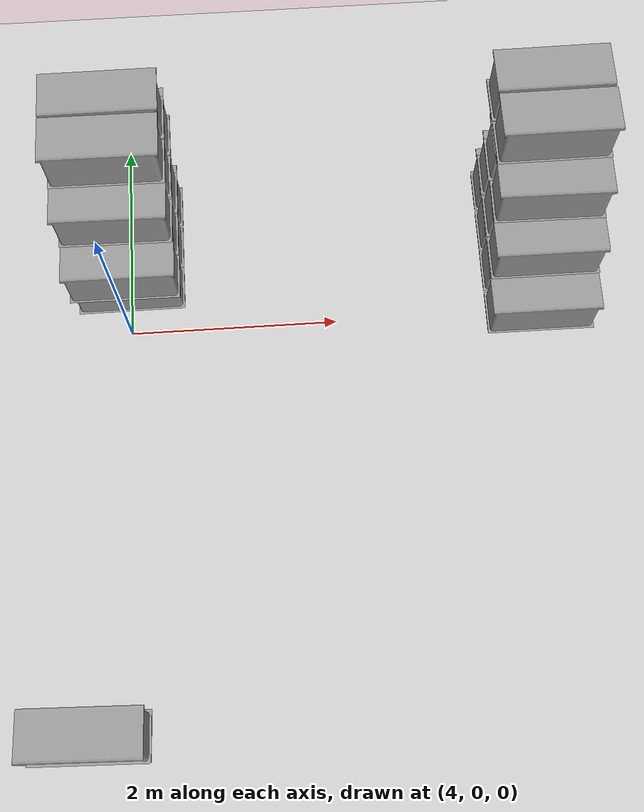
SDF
<sdf version="1.7">
 <world name="default">
  <model name="ground_plane">
   <static>1</static>
   <link name="link">
    <collision name="collision">
     <geometry><plane><normal>0 0 1</normal><size>100 100</size></plane></geometry>
     <surface><friction><ode><mu>100</mu><mu2>50</mu2></ode></friction></surface>
    </collision>
    <visual name="visual">
     <cast_shadows>0</cast_shadows>
     <geometry><plane><normal>0 0 1</normal><size>100 100</size></plane></geometry>
     <material>
      <script><uri>file://media/materials/scripts/gazebo.material</uri><name>Gazebo/Grey</name></script>
     </material>
    </visual>
   </link>
  </model>
  <model name="my_robot36">
   <link name="link_0">
    <inertial>
     <mass>1</mass>
     <inertia>
      <ixx>0.166667</ixx>
      <ixy>0</ixy>
      <ixz>0</ixz>
      <iyy>0.166667</iyy>
      <iyz>0</iyz>
      <izz>0.166667</izz>
     </inertia>
    </inertial>
    <visual name="visual">
     <geometry><mesh><uri>/home/cyun/cotton_box.stl</uri><scale>1 1 1</scale></mesh></geometry>
     <material>
      <lighting>1</lighting>
      <script><uri>file://media/materials/scripts/gazebo.material</uri><name>Gazebo/Grey</name></script>
      <shader type="pixel"><normal_map>__default__</normal_map></shader>
      <ambient>0.3 0.3 0.3 1</ambient>
      <diffuse>0.7 0.7 0.7 1</diffuse>
      <specular>0.01 0.01 0.01 1</specular>
      <emissive>0 0 0 1</emissive>
     </material>
    </visual>
    <collision name="collision">
     <geometry><mesh><uri>/home/cyun/cotton_box.stl</uri><scale>1 1 1</scale></mesh></geometry>
     <surface>
      <friction>
       <ode><mu>1</mu><mu2>1</mu2><fdir1>0 0 0</fdir1><slip1>0</slip1><slip2>0</slip2></ode>
       <torsional>
        <coefficient>1</coefficient>
        <patch_radius>0</patch_radius>
        <surface_radius>0</surface_radius>
        <use_patch_radius>1</use_patch_radius>
        <ode><slip>0</slip></ode>
       </torsional>
      </friction>
      <bounce><restitution_coefficient>0</restitution_coefficient><threshold>1e+06</threshold></bounce>
      <contact>
       <collide_without_contact>0</collide_without_contact>
       <collide_without_contact_bitmask>1</collide_without_contact_bitmask>
       <collide_bitmask>1</collide_bitmask>
       <ode>
        <soft_cfm>0</soft_cfm>
        <soft_erp>0.2</soft_erp>
        <kp>1e+13</kp>
        <kd>1</kd>
        <max_vel>0.01</max_vel>
        <min_depth>0</min_depth>
       </ode>
       <bullet>
        <split_impulse>1</split_impulse>
        <split_impulse_penetration_threshold>-0.01</split_impulse_penetration_threshold>
        <soft_cfm>0</soft_cfm>
        <soft_erp>0.2</soft_erp>
        <kp>1e+13</kp>
        <kd>1</kd>
       </bullet>
      </contact>
     </surface>
    </collision>
   </link>
   <static>0</static>
   <pose>3.99993 0.453425 0.019808 8e-06 2.7e-05 1.57569</pose>
  </model>
  <model name="my_robot37">
   <link name="link_0">
    <inertial>
     <mass>1</mass>
     <inertia>
      <ixx>0.166667</ixx>
      <ixy>0</ixy>
      <ixz>0</ixz>
      <iyy>0.166667</iyy>
      <iyz>0</iyz>
      <izz>0.166667</izz>
     </inertia>
    </inertial>
    <visual name="visual">
     <geometry><mesh><uri>/home/cyun/cotton_box.stl</uri><scale>1 1 1</scale></mesh></geometry>
     <material>
      <lighting>1</lighting>
      <script><uri>file://media/materials/scripts/gazebo.material</uri><name>Gazebo/Grey</name></script>
      <shader type="pixel"><normal_map>__default__</normal_map></shader>
      <ambient>0.3 0.3 0.3 1</ambient>
      <diffuse>0.7 0.7 0.7 1</diffuse>
      <specular>0.01 0.01 0.01 1</specular>
      <emissive>0 0 0 1</emissive>
     </material>
    </visual>
    <collision name="collision">
     <geometry><mesh><uri>/home/cyun/cotton_box.stl</uri><scale>1 1 1</scale></mesh></geometry>
     <surface>
      <friction>
       <ode><mu>1</mu><mu2>1</mu2><fdir1>0 0 0</fdir1><slip1>0</slip1><slip2>0</slip2></ode>
       <torsional>
        <coefficient>1</coefficient>
        <patch_radius>0</patch_radius>
        <surface_radius>0</surface_radius>
        <use_patch_radius>1</use_patch_radius>
        <ode><slip>0</slip></ode>
       </torsional>
      </friction>
      <bounce><restitution_coefficient>0</restitution_coefficient><threshold>1e+06</threshold></bounce>
      <contact>
       <collide_without_contact>0</collide_without_contact>
       <collide_without_contact_bitmask>1</collide_without_contact_bitmask>
       <collide_bitmask>1</collide_bitmask>
       <ode>
        <soft_cfm>0</soft_cfm>
        <soft_erp>0.2</soft_erp>
        <kp>1e+13</kp>
        <kd>1</kd>
        <max_vel>0.01</max_vel>
        <min_depth>0</min_depth>
       </ode>
       <bullet>
        <split_impulse>1</split_impulse>
        <split_impulse_penetration_threshold>-0.01</split_impulse_penetration_threshold>
        <soft_cfm>0</soft_cfm>
        <soft_erp>0.2</soft_erp>
        <kp>1e+13</kp>
        <kd>1</kd>
       </bullet>
      </contact>
     </surface>
    </collision>
   </link>
   <static>0</static>
   <pose>3.99965 0.901108 0.019917 -1.8e-05 -7e-06 1.56951</pose>
  </model>
  <model name="my_robot38">
   <link name="link_0">
    <inertial>
     <mass>1</mass>
     <inertia>
      <ixx>0.166667</ixx>
      <ixy>0</ixy>
      <ixz>0</ixz>
      <iyy>0.166667</iyy>
      <iyz>0</iyz>
      <izz>0.166667</izz>
     </inertia>
    </inertial>
    <visual name="visual">
     <geometry><mesh><uri>/home/cyun/cotton_box.stl</uri><scale>1 1 1</scale></mesh></geometry>
     <material>
      <lighting>1</lighting>
      <script><uri>file://media/materials/scripts/gazebo.material</uri><name>Gazebo/Grey</name></script>
      <shader type="pixel"><normal_map>__default__</normal_map></shader>
      <ambient>0.3 0.3 0.3 1</ambient>
      <diffuse>0.7 0.7 0.7 1</diffuse>
      <specular>0.01 0.01 0.01 1</specular>
      <emissive>0 0 0 1</emissive>
     </material>
    </visual>
    <collision name="collision">
     <geometry><mesh><uri>/home/cyun/cotton_box.stl</uri><scale>1 1 1</scale></mesh></geometry>
     <surface>
      <friction>
       <ode><mu>1</mu><mu2>1</mu2><fdir1>0 0 0</fdir1><slip1>0</slip1><slip2>0</slip2></ode>
       <torsional>
        <coefficient>1</coefficient>
        <patch_radius>0</patch_radius>
        <surface_radius>0</surface_radius>
        <use_patch_radius>1</use_patch_radius>
        <ode><slip>0</slip></ode>
       </torsional>
      </friction>
      <bounce><restitution_coefficient>0</restitution_coefficient><threshold>1e+06</threshold></bounce>
      <contact>
       <collide_without_contact>0</collide_without_contact>
       <collide_without_contact_bitmask>1</collide_without_contact_bitmask>
       <collide_bitmask>1</collide_bitmask>
       <ode>
        <soft_cfm>0</soft_cfm>
        <soft_erp>0.2</soft_erp>
        <kp>1e+13</kp>
        <kd>1</kd>
        <max_vel>0.01</max_vel>
        <min_depth>0</min_depth>
       </ode>
       <bullet>
        <split_impulse>1</split_impulse>
        <split_impulse_penetration_threshold>-0.01</split_impulse_penetration_threshold>
        <soft_cfm>0</soft_cfm>
        <soft_erp>0.2</soft_erp>
        <kp>1e+13</kp>
        <kd>1</kd>
       </bullet>
      </contact>
     </surface>
    </collision>
   </link>
   <static>0</static>
   <pose>4.00003 1.35052 0.019995 -1.3e-05 1.1e-05 1.57578</pose>
  </model>
  <model name="my_robot45">
   <link name="link_0">
    <inertial>
     <mass>1</mass>
     <inertia>
      <ixx>0.166667</ixx>
      <ixy>0</ixy>
      <ixz>0</ixz>
      <iyy>0.166667</iyy>
      <iyz>0</iyz>
      <izz>0.166667</izz>
     </inertia>
    </inertial>
    <visual name="visual">
     <geometry><mesh><uri>/home/cyun/cotton_box.stl</uri><scale>1 1 1</scale></mesh></geometry>
     <material>
      <lighting>1</lighting>
      <script><uri>file://media/materials/scripts/gazebo.material</uri><name>Gazebo/Grey</name></script>
      <shader type="pixel"><normal_map>__default__</normal_map></shader>
      <ambient>0.3 0.3 0.3 1</ambient>
      <diffuse>0.7 0.7 0.7 1</diffuse>
      <specular>0.01 0.01 0.01 1</specular>
      <emissive>0 0 0 1</emissive>
     </material>
    </visual>
    <collision name="collision">
     <geometry><mesh><uri>/home/cyun/cotton_box.stl</uri><scale>1 1 1</scale></mesh></geometry>
     <surface>
      <friction>
       <ode><mu>1</mu><mu2>1</mu2><fdir1>0 0 0</fdir1><slip1>0</slip1><slip2>0</slip2></ode>
       <torsional>
        <coefficient>1</coefficient>
        <patch_radius>0</patch_radius>
        <surface_radius>0</surface_radius>
        <use_patch_radius>1</use_patch_radius>
        <ode><slip>0</slip></ode>
       </torsional>
      </friction>
      <bounce><restitution_coefficient>0</restitution_coefficient><threshold>1e+06</threshold></bounce>
      <contact>
       <collide_without_contact>0</collide_without_contact>
       <collide_without_contact_bitmask>1</collide_without_contact_bitmask>
       <collide_bitmask>1</collide_bitmask>
       <ode>
        <soft_cfm>0</soft_cfm>
        <soft_erp>0.2</soft_erp>
        <kp>1e+13</kp>
        <kd>1</kd>
        <max_vel>0.01</max_vel>
        <min_depth>0</min_depth>
       </ode>
       <bullet>
        <split_impulse>1</split_impulse>
        <split_impulse_penetration_threshold>-0.01</split_impulse_penetration_threshold>
        <soft_cfm>0</soft_cfm>
        <soft_erp>0.2</soft_erp>
        <kp>1e+13</kp>
        <kd>1</kd>
       </bullet>
      </contact>
     </surface>
    </collision>
   </link>
   <static>0</static>
   <pose>4.00757 0.356114 0.509817 -1e-05 6e-06 1.56913</pose>
  </model>
  <model name="my_robot46">
   <link name="link_0">
    <inertial>
     <mass>1</mass>
     <inertia>
      <ixx>0.166667</ixx>
      <ixy>0</ixy>
      <ixz>0</ixz>
      <iyy>0.166667</iyy>
      <iyz>0</iyz>
      <izz>0.166667</izz>
     </inertia>
    </inertial>
    <visual name="visual">
     <geometry><mesh><uri>/home/cyun/cotton_box.stl</uri><scale>1 1 1</scale></mesh></geometry>
     <material>
      <lighting>1</lighting>
      <script><uri>file://media/materials/scripts/gazebo.material</uri><name>Gazebo/Grey</name></script>
      <shader type="pixel"><normal_map>__default__</normal_map></shader>
      <ambient>0.3 0.3 0.3 1</ambient>
      <diffuse>0.7 0.7 0.7 1</diffuse>
      <specular>0.01 0.01 0.01 1</specular>
      <emissive>0 0 0 1</emissive>
     </material>
    </visual>
    <collision name="collision">
     <geometry><mesh><uri>/home/cyun/cotton_box.stl</uri><scale>1 1 1</scale></mesh></geometry>
     <surface>
      <friction>
       <ode><mu>1</mu><mu2>1</mu2><fdir1>0 0 0</fdir1><slip1>0</slip1><slip2>0</slip2></ode>
       <torsional>
        <coefficient>1</coefficient>
        <patch_radius>0</patch_radius>
        <surface_radius>0</surface_radius>
        <use_patch_radius>1</use_patch_radius>
        <ode><slip>0</slip></ode>
       </torsional>
      </friction>
      <bounce><restitution_coefficient>0</restitution_coefficient><threshold>1e+06</threshold></bounce>
      <contact>
       <collide_without_contact>0</collide_without_contact>
       <collide_without_contact_bitmask>1</collide_without_contact_bitmask>
       <collide_bitmask>1</collide_bitmask>
       <ode>
        <soft_cfm>0</soft_cfm>
        <soft_erp>0.2</soft_erp>
        <kp>1e+13</kp>
        <kd>1</kd>
        <max_vel>0.01</max_vel>
        <min_depth>0</min_depth>
       </ode>
       <bullet>
        <split_impulse>1</split_impulse>
        <split_impulse_penetration_threshold>-0.01</split_impulse_penetration_threshold>
        <soft_cfm>0</soft_cfm>
        <soft_erp>0.2</soft_erp>
        <kp>1e+13</kp>
        <kd>1</kd>
       </bullet>
      </contact>
     </surface>
    </collision>
   </link>
   <static>0</static>
   <pose>4.0017 0.803054 0.509915 -1.2e-05 -7e-06 1.56832</pose>
  </model>
  <model name="my_robot47">
   <link name="link_0">
    <inertial>
     <mass>1</mass>
     <inertia>
      <ixx>0.166667</ixx>
      <ixy>0</ixy>
      <ixz>0</ixz>
      <iyy>0.166667</iyy>
      <iyz>0</iyz>
      <izz>0.166667</izz>
     </inertia>
    </inertial>
    <visual name="visual">
     <geometry><mesh><uri>/home/cyun/cotton_box.stl</uri><scale>1 1 1</scale></mesh></geometry>
     <material>
      <lighting>1</lighting>
      <script><uri>file://media/materials/scripts/gazebo.material</uri><name>Gazebo/Grey</name></script>
      <shader type="pixel"><normal_map>__default__</normal_map></shader>
      <ambient>0.3 0.3 0.3 1</ambient>
      <diffuse>0.7 0.7 0.7 1</diffuse>
      <specular>0.01 0.01 0.01 1</specular>
      <emissive>0 0 0 1</emissive>
     </material>
    </visual>
    <collision name="collision">
     <geometry><mesh><uri>/home/cyun/cotton_box.stl</uri><scale>1 1 1</scale></mesh></geometry>
     <surface>
      <friction>
       <ode><mu>1</mu><mu2>1</mu2><fdir1>0 0 0</fdir1><slip1>0</slip1><slip2>0</slip2></ode>
       <torsional>
        <coefficient>1</coefficient>
        <patch_radius>0</patch_radius>
        <surface_radius>0</surface_radius>
        <use_patch_radius>1</use_patch_radius>
        <ode><slip>0</slip></ode>
       </torsional>
      </friction>
      <bounce><restitution_coefficient>0</restitution_coefficient><threshold>1e+06</threshold></bounce>
      <contact>
       <collide_without_contact>0</collide_without_contact>
       <collide_without_contact_bitmask>1</collide_without_contact_bitmask>
       <collide_bitmask>1</collide_bitmask>
       <ode>
        <soft_cfm>0</soft_cfm>
        <soft_erp>0.2</soft_erp>
        <kp>1e+13</kp>
        <kd>1</kd>
        <max_vel>0.01</max_vel>
        <min_depth>0</min_depth>
       </ode>
       <bullet>
        <split_impulse>1</split_impulse>
        <split_impulse_penetration_threshold>-0.01</split_impulse_penetration_threshold>
        <soft_cfm>0</soft_cfm>
        <soft_erp>0.2</soft_erp>
        <kp>1e+13</kp>
        <kd>1</kd>
       </bullet>
      </contact>
     </surface>
    </collision>
   </link>
   <static>0</static>
   <pose>4.00145 1.25405 0.509991 1.1e-05 7e-06 1.56604</pose>
  </model>
  <model name="my_robot54">
   <link name="link_0">
    <inertial>
     <mass>1</mass>
     <inertia>
      <ixx>0.166667</ixx>
      <ixy>0</ixy>
      <ixz>0</ixz>
      <iyy>0.166667</iyy>
      <iyz>0</iyz>
      <izz>0.166667</izz>
     </inertia>
    </inertial>
    <visual name="visual">
     <geometry><mesh><uri>/home/cyun/cotton_box.stl</uri><scale>1 1 1</scale></mesh></geometry>
     <material>
      <lighting>1</lighting>
      <script><uri>file://media/materials/scripts/gazebo.material</uri><name>Gazebo/Grey</name></script>
      <shader type="pixel"><normal_map>__default__</normal_map></shader>
      <ambient>0.3 0.3 0.3 1</ambient>
      <diffuse>0.7 0.7 0.7 1</diffuse>
      <specular>0.01 0.01 0.01 1</specular>
      <emissive>0 0 0 1</emissive>
     </material>
    </visual>
    <collision name="collision">
     <geometry><mesh><uri>/home/cyun/cotton_box.stl</uri><scale>1 1 1</scale></mesh></geometry>
     <surface>
      <friction>
       <ode><mu>1</mu><mu2>1</mu2><fdir1>0 0 0</fdir1><slip1>0</slip1><slip2>0</slip2></ode>
       <torsional>
        <coefficient>1</coefficient>
        <patch_radius>0</patch_radius>
        <surface_radius>0</surface_radius>
        <use_patch_radius>1</use_patch_radius>
        <ode><slip>0</slip></ode>
       </torsional>
      </friction>
      <bounce><restitution_coefficient>0</restitution_coefficient><threshold>1e+06</threshold></bounce>
      <contact>
       <collide_without_contact>0</collide_without_contact>
       <collide_without_contact_bitmask>1</collide_without_contact_bitmask>
       <collide_bitmask>1</collide_bitmask>
       <ode>
        <soft_cfm>0</soft_cfm>
        <soft_erp>0.2</soft_erp>
        <kp>1e+13</kp>
        <kd>1</kd>
        <max_vel>0.01</max_vel>
        <min_depth>0</min_depth>
       </ode>
       <bullet>
        <split_impulse>1</split_impulse>
        <split_impulse_penetration_threshold>-0.01</split_impulse_penetration_threshold>
        <soft_cfm>0</soft_cfm>
        <soft_erp>0.2</soft_erp>
        <kp>1e+13</kp>
        <kd>1</kd>
       </bullet>
      </contact>
     </surface>
    </collision>
   </link>
   <static>0</static>
   <pose>4.00218 0.694463 0.999918 -4e-06 -6e-06 1.56103</pose>
  </model>
  <model name="my_robot55">
   <link name="link_0">
    <inertial>
     <mass>1</mass>
     <inertia>
      <ixx>0.166667</ixx>
      <ixy>0</ixy>
      <ixz>0</ixz>
      <iyy>0.166667</iyy>
      <iyz>0</iyz>
      <izz>0.166667</izz>
     </inertia>
    </inertial>
    <visual name="visual">
     <geometry><mesh><uri>/home/cyun/cotton_box.stl</uri><scale>1 1 1</scale></mesh></geometry>
     <material>
      <lighting>1</lighting>
      <script><uri>file://media/materials/scripts/gazebo.material</uri><name>Gazebo/Grey</name></script>
      <shader type="pixel"><normal_map>__default__</normal_map></shader>
      <ambient>0.3 0.3 0.3 1</ambient>
      <diffuse>0.7 0.7 0.7 1</diffuse>
      <specular>0.01 0.01 0.01 1</specular>
      <emissive>0 0 0 1</emissive>
     </material>
    </visual>
    <collision name="collision">
     <geometry><mesh><uri>/home/cyun/cotton_box.stl</uri><scale>1 1 1</scale></mesh></geometry>
     <surface>
      <friction>
       <ode><mu>1</mu><mu2>1</mu2><fdir1>0 0 0</fdir1><slip1>0</slip1><slip2>0</slip2></ode>
       <torsional>
        <coefficient>1</coefficient>
        <patch_radius>0</patch_radius>
        <surface_radius>0</surface_radius>
        <use_patch_radius>1</use_patch_radius>
        <ode><slip>0</slip></ode>
       </torsional>
      </friction>
      <bounce><restitution_coefficient>0</restitution_coefficient><threshold>1e+06</threshold></bounce>
      <contact>
       <collide_without_contact>0</collide_without_contact>
       <collide_without_contact_bitmask>1</collide_without_contact_bitmask>
       <collide_bitmask>1</collide_bitmask>
       <ode>
        <soft_cfm>0</soft_cfm>
        <soft_erp>0.2</soft_erp>
        <kp>1e+13</kp>
        <kd>1</kd>
        <max_vel>0.01</max_vel>
        <min_depth>0</min_depth>
       </ode>
       <bullet>
        <split_impulse>1</split_impulse>
        <split_impulse_penetration_threshold>-0.01</split_impulse_penetration_threshold>
        <soft_cfm>0</soft_cfm>
        <soft_erp>0.2</soft_erp>
        <kp>1e+13</kp>
        <kd>1</kd>
       </bullet>
      </contact>
     </surface>
    </collision>
   </link>
   <static>0</static>
   <pose>3.99865 1.1473 0.999992 1.2e-05 -0 1.58116</pose>
  </model>
  <model name="my_robot56">
   <link name="link_0">
    <inertial>
     <mass>1</mass>
     <inertia>
      <ixx>0.166667</ixx>
      <ixy>0</ixy>
      <ixz>0</ixz>
      <iyy>0.166667</iyy>
      <iyz>0</iyz>
      <izz>0.166667</izz>
     </inertia>
    </inertial>
    <visual name="visual">
     <geometry><mesh><uri>/home/cyun/cotton_box.stl</uri><scale>1 1 1</scale></mesh></geometry>
     <material>
      <lighting>1</lighting>
      <script><uri>file://media/materials/scripts/gazebo.material</uri><name>Gazebo/Grey</name></script>
      <shader type="pixel"><normal_map>__default__</normal_map></shader>
      <ambient>0.3 0.3 0.3 1</ambient>
      <diffuse>0.7 0.7 0.7 1</diffuse>
      <specular>0.01 0.01 0.01 1</specular>
      <emissive>0 0 0 1</emissive>
     </material>
    </visual>
    <collision name="collision">
     <geometry><mesh><uri>/home/cyun/cotton_box.stl</uri><scale>1 1 1</scale></mesh></geometry>
     <surface>
      <friction>
       <ode><mu>1</mu><mu2>1</mu2><fdir1>0 0 0</fdir1><slip1>0</slip1><slip2>0</slip2></ode>
       <torsional>
        <coefficient>1</coefficient>
        <patch_radius>0</patch_radius>
        <surface_radius>0</surface_radius>
        <use_patch_radius>1</use_patch_radius>
        <ode><slip>0</slip></ode>
       </torsional>
      </friction>
      <bounce><restitution_coefficient>0</restitution_coefficient><threshold>1e+06</threshold></bounce>
      <contact>
       <collide_without_contact>0</collide_without_contact>
       <collide_without_contact_bitmask>1</collide_without_contact_bitmask>
       <collide_bitmask>1</collide_bitmask>
       <ode>
        <soft_cfm>0</soft_cfm>
        <soft_erp>0.2</soft_erp>
        <kp>1e+13</kp>
        <kd>1</kd>
        <max_vel>0.01</max_vel>
        <min_depth>0</min_depth>
       </ode>
       <bullet>
        <split_impulse>1</split_impulse>
        <split_impulse_penetration_threshold>-0.01</split_impulse_penetration_threshold>
        <soft_cfm>0</soft_cfm>
        <soft_erp>0.2</soft_erp>
        <kp>1e+13</kp>
        <kd>1</kd>
       </bullet>
      </contact>
     </surface>
    </collision>
   </link>
   <static>0</static>
   <pose>3.99887 1.59316 0.999972 8e-06 8e-06 1.57917</pose>
  </model>
  <model name="my_robot62">
   <link name="link_0">
    <inertial>
     <mass>1</mass>
     <inertia>
      <ixx>0.166667</ixx>
      <ixy>0</ixy>
      <ixz>0</ixz>
      <iyy>0.166667</iyy>
      <iyz>0</iyz>
      <izz>0.166667</izz>
     </inertia>
    </inertial>
    <visual name="visual">
     <geometry><mesh><uri>/home/cyun/cotton_box.stl</uri><scale>1 1 1</scale></mesh></geometry>
     <material>
      <lighting>1</lighting>
      <script><uri>file://media/materials/scripts/gazebo.material</uri><name>Gazebo/Grey</name></script>
      <shader type="pixel"><normal_map>__default__</normal_map></shader>
      <ambient>0.3 0.3 0.3 1</ambient>
      <diffuse>0.7 0.7 0.7 1</diffuse>
      <specular>0.01 0.01 0.01 1</specular>
      <emissive>0 0 0 1</emissive>
     </material>
    </visual>
    <collision name="collision">
     <geometry><mesh><uri>/home/cyun/cotton_box.stl</uri><scale>1 1 1</scale></mesh></geometry>
     <surface>
      <friction>
       <ode><mu>1</mu><mu2>1</mu2><fdir1>0 0 0</fdir1><slip1>0</slip1><slip2>0</slip2></ode>
       <torsional>
        <coefficient>1</coefficient>
        <patch_radius>0</patch_radius>
        <surface_radius>0</surface_radius>
        <use_patch_radius>1</use_patch_radius>
        <ode><slip>0</slip></ode>
       </torsional>
      </friction>
      <bounce><restitution_coefficient>0</restitution_coefficient><threshold>1e+06</threshold></bounce>
      <contact>
       <collide_without_contact>0</collide_without_contact>
       <collide_without_contact_bitmask>1</collide_without_contact_bitmask>
       <collide_bitmask>1</collide_bitmask>
       <ode>
        <soft_cfm>0</soft_cfm>
        <soft_erp>0.2</soft_erp>
        <kp>1e+13</kp>
        <kd>1</kd>
        <max_vel>0.01</max_vel>
        <min_depth>0</min_depth>
       </ode>
       <bullet>
        <split_impulse>1</split_impulse>
        <split_impulse_penetration_threshold>-0.01</split_impulse_penetration_threshold>
        <soft_cfm>0</soft_cfm>
        <soft_erp>0.2</soft_erp>
        <kp>1e+13</kp>
        <kd>1</kd>
       </bullet>
      </contact>
     </surface>
    </collision>
   </link>
   <static>0</static>
   <pose>4.00288 1.03318 1.48999 1.2e-05 -0 1.56649</pose>
  </model>
  <model name="my_robot63">
   <link name="link_0">
    <inertial>
     <mass>1</mass>
     <inertia>
      <ixx>0.166667</ixx>
      <ixy>0</ixy>
      <ixz>0</ixz>
      <iyy>0.166667</iyy>
      <iyz>0</iyz>
      <izz>0.166667</izz>
     </inertia>
    </inertial>
    <visual name="visual">
     <geometry><mesh><uri>/home/cyun/cotton_box.stl</uri><scale>1 1 1</scale></mesh></geometry>
     <material>
      <lighting>1</lighting>
      <script><uri>file://media/materials/scripts/gazebo.material</uri><name>Gazebo/Grey</name></script>
      <shader type="pixel"><normal_map>__default__</normal_map></shader>
      <ambient>0.3 0.3 0.3 1</ambient>
      <diffuse>0.7 0.7 0.7 1</diffuse>
      <specular>0.01 0.01 0.01 1</specular>
      <emissive>0 0 0 1</emissive>
     </material>
    </visual>
    <collision name="collision">
     <geometry><mesh><uri>/home/cyun/cotton_box.stl</uri><scale>1 1 1</scale></mesh></geometry>
     <surface>
      <friction>
       <ode><mu>1</mu><mu2>1</mu2><fdir1>0 0 0</fdir1><slip1>0</slip1><slip2>0</slip2></ode>
       <torsional>
        <coefficient>1</coefficient>
        <patch_radius>0</patch_radius>
        <surface_radius>0</surface_radius>
        <use_patch_radius>1</use_patch_radius>
        <ode><slip>0</slip></ode>
       </torsional>
      </friction>
      <bounce><restitution_coefficient>0</restitution_coefficient><threshold>1e+06</threshold></bounce>
      <contact>
       <collide_without_contact>0</collide_without_contact>
       <collide_without_contact_bitmask>1</collide_without_contact_bitmask>
       <collide_bitmask>1</collide_bitmask>
       <ode>
        <soft_cfm>0</soft_cfm>
        <soft_erp>0.2</soft_erp>
        <kp>1e+13</kp>
        <kd>1</kd>
        <max_vel>0.01</max_vel>
        <min_depth>0</min_depth>
       </ode>
       <bullet>
        <split_impulse>1</split_impulse>
        <split_impulse_penetration_threshold>-0.01</split_impulse_penetration_threshold>
        <soft_cfm>0</soft_cfm>
        <soft_erp>0.2</soft_erp>
        <kp>1e+13</kp>
        <kd>1</kd>
       </bullet>
      </contact>
     </surface>
    </collision>
   </link>
   <static>0</static>
   <pose>4.00166 1.47829 1.48999 -1.3e-05 5.4e-05 1.57534</pose>
  </model>
  <model name="my_robot69">
   <link name="link_0">
    <inertial>
     <mass>1</mass>
     <inertia>
      <ixx>0.166667</ixx>
      <ixy>0</ixy>
      <ixz>0</ixz>
      <iyy>0.166667</iyy>
      <iyz>0</iyz>
      <izz>0.166667</izz>
     </inertia>
    </inertial>
    <visual name="visual">
     <geometry><mesh><uri>/home/cyun/cotton_box.stl</uri><scale>1 1 1</scale></mesh></geometry>
     <material>
      <lighting>1</lighting>
      <script><uri>file://media/materials/scripts/gazebo.material</uri><name>Gazebo/Grey</name></script>
      <shader type="pixel"><normal_map>__default__</normal_map></shader>
      <ambient>0.3 0.3 0.3 1</ambient>
      <diffuse>0.7 0.7 0.7 1</diffuse>
      <specular>0.01 0.01 0.01 1</specular>
      <emissive>0 0 0 1</emissive>
     </material>
    </visual>
    <collision name="collision">
     <geometry><mesh><uri>/home/cyun/cotton_box.stl</uri><scale>1 1 1</scale></mesh></geometry>
     <surface>
      <friction>
       <ode><mu>1</mu><mu2>1</mu2><fdir1>0 0 0</fdir1><slip1>0</slip1><slip2>0</slip2></ode>
       <torsional>
        <coefficient>1</coefficient>
        <patch_radius>0</patch_radius>
        <surface_radius>0</surface_radius>
        <use_patch_radius>1</use_patch_radius>
        <ode><slip>0</slip></ode>
       </torsional>
      </friction>
      <bounce><restitution_coefficient>0</restitution_coefficient><threshold>1e+06</threshold></bounce>
      <contact>
       <collide_without_contact>0</collide_without_contact>
       <collide_without_contact_bitmask>1</collide_without_contact_bitmask>
       <collide_bitmask>1</collide_bitmask>
       <ode>
        <soft_cfm>0</soft_cfm>
        <soft_erp>0.2</soft_erp>
        <kp>1e+13</kp>
        <kd>1</kd>
        <max_vel>0.01</max_vel>
        <min_depth>0</min_depth>
       </ode>
       <bullet>
        <split_impulse>1</split_impulse>
        <split_impulse_penetration_threshold>-0.01</split_impulse_penetration_threshold>
        <soft_cfm>0</soft_cfm>
        <soft_erp>0.2</soft_erp>
        <kp>1e+13</kp>
        <kd>1</kd>
       </bullet>
      </contact>
     </surface>
    </collision>
   </link>
   <static>0</static>
   <pose>7.99905 -0.001619 0.02 1e-06 -7e-06 1.5687</pose>
  </model>
  <model name="my_robot70">
   <link name="link_0">
    <inertial>
     <mass>1</mass>
     <inertia>
      <ixx>0.166667</ixx>
      <ixy>0</ixy>
      <ixz>0</ixz>
      <iyy>0.166667</iyy>
      <iyz>0</iyz>
      <izz>0.166667</izz>
     </inertia>
    </inertial>
    <visual name="visual">
     <geometry><mesh><uri>/home/cyun/cotton_box.stl</uri><scale>1 1 1</scale></mesh></geometry>
     <material>
      <lighting>1</lighting>
      <script><uri>file://media/materials/scripts/gazebo.material</uri><name>Gazebo/Grey</name></script>
      <shader type="pixel"><normal_map>__default__</normal_map></shader>
      <ambient>0.3 0.3 0.3 1</ambient>
      <diffuse>0.7 0.7 0.7 1</diffuse>
      <specular>0.01 0.01 0.01 1</specular>
      <emissive>0 0 0 1</emissive>
     </material>
    </visual>
    <collision name="collision">
     <geometry><mesh><uri>/home/cyun/cotton_box.stl</uri><scale>1 1 1</scale></mesh></geometry>
     <surface>
      <friction>
       <ode><mu>1</mu><mu2>1</mu2><fdir1>0 0 0</fdir1><slip1>0</slip1><slip2>0</slip2></ode>
       <torsional>
        <coefficient>1</coefficient>
        <patch_radius>0</patch_radius>
        <surface_radius>0</surface_radius>
        <use_patch_radius>1</use_patch_radius>
        <ode><slip>0</slip></ode>
       </torsional>
      </friction>
      <bounce><restitution_coefficient>0</restitution_coefficient><threshold>1e+06</threshold></bounce>
      <contact>
       <collide_without_contact>0</collide_without_contact>
       <collide_without_contact_bitmask>1</collide_without_contact_bitmask>
       <collide_bitmask>1</collide_bitmask>
       <ode>
        <soft_cfm>0</soft_cfm>
        <soft_erp>0.2</soft_erp>
        <kp>1e+13</kp>
        <kd>1</kd>
        <max_vel>0.01</max_vel>
        <min_depth>0</min_depth>
       </ode>
       <bullet>
        <split_impulse>1</split_impulse>
        <split_impulse_penetration_threshold>-0.01</split_impulse_penetration_threshold>
        <soft_cfm>0</soft_cfm>
        <soft_erp>0.2</soft_erp>
        <kp>1e+13</kp>
        <kd>1</kd>
       </bullet>
      </contact>
     </surface>
    </collision>
   </link>
   <static>0</static>
   <pose>7.99884 0.449173 0.02 0 1e-05 1.56777</pose>
  </model>
  <model name="my_robot71">
   <link name="link_0">
    <inertial>
     <mass>1</mass>
     <inertia>
      <ixx>0.166667</ixx>
      <ixy>0</ixy>
      <ixz>0</ixz>
      <iyy>0.166667</iyy>
      <iyz>0</iyz>
      <izz>0.166667</izz>
     </inertia>
    </inertial>
    <visual name="visual">
     <geometry><mesh><uri>/home/cyun/cotton_box.stl</uri><scale>1 1 1</scale></mesh></geometry>
     <material>
      <lighting>1</lighting>
      <script><uri>file://media/materials/scripts/gazebo.material</uri><name>Gazebo/Grey</name></script>
      <shader type="pixel"><normal_map>__default__</normal_map></shader>
      <ambient>0.3 0.3 0.3 1</ambient>
      <diffuse>0.7 0.7 0.7 1</diffuse>
      <specular>0.01 0.01 0.01 1</specular>
      <emissive>0 0 0 1</emissive>
     </material>
    </visual>
    <collision name="collision">
     <geometry><mesh><uri>/home/cyun/cotton_box.stl</uri><scale>1 1 1</scale></mesh></geometry>
     <surface>
      <friction>
       <ode><mu>1</mu><mu2>1</mu2><fdir1>0 0 0</fdir1><slip1>0</slip1><slip2>0</slip2></ode>
       <torsional>
        <coefficient>1</coefficient>
        <patch_radius>0</patch_radius>
        <surface_radius>0</surface_radius>
        <use_patch_radius>1</use_patch_radius>
        <ode><slip>0</slip></ode>
       </torsional>
      </friction>
      <bounce><restitution_coefficient>0</restitution_coefficient><threshold>1e+06</threshold></bounce>
      <contact>
       <collide_without_contact>0</collide_without_contact>
       <collide_without_contact_bitmask>1</collide_without_contact_bitmask>
       <collide_bitmask>1</collide_bitmask>
       <ode>
        <soft_cfm>0</soft_cfm>
        <soft_erp>0.2</soft_erp>
        <kp>1e+13</kp>
        <kd>1</kd>
        <max_vel>0.01</max_vel>
        <min_depth>0</min_depth>
       </ode>
       <bullet>
        <split_impulse>1</split_impulse>
        <split_impulse_penetration_threshold>-0.01</split_impulse_penetration_threshold>
        <soft_cfm>0</soft_cfm>
        <soft_erp>0.2</soft_erp>
        <kp>1e+13</kp>
        <kd>1</kd>
       </bullet>
      </contact>
     </surface>
    </collision>
   </link>
   <static>0</static>
   <pose>7.99988 0.901612 0.01982 4e-06 7.2e-05 1.57454</pose>
  </model>
  <model name="my_robot72">
   <link name="link_0">
    <inertial>
     <mass>1</mass>
     <inertia>
      <ixx>0.166667</ixx>
      <ixy>0</ixy>
      <ixz>0</ixz>
      <iyy>0.166667</iyy>
      <iyz>0</iyz>
      <izz>0.166667</izz>
     </inertia>
    </inertial>
    <visual name="visual">
     <geometry><mesh><uri>/home/cyun/cotton_box.stl</uri><scale>1 1 1</scale></mesh></geometry>
     <material>
      <lighting>1</lighting>
      <script><uri>file://media/materials/scripts/gazebo.material</uri><name>Gazebo/Grey</name></script>
      <shader type="pixel"><normal_map>__default__</normal_map></shader>
      <ambient>0.3 0.3 0.3 1</ambient>
      <diffuse>0.7 0.7 0.7 1</diffuse>
      <specular>0.01 0.01 0.01 1</specular>
      <emissive>0 0 0 1</emissive>
     </material>
    </visual>
    <collision name="collision">
     <geometry><mesh><uri>/home/cyun/cotton_box.stl</uri><scale>1 1 1</scale></mesh></geometry>
     <surface>
      <friction>
       <ode><mu>1</mu><mu2>1</mu2><fdir1>0 0 0</fdir1><slip1>0</slip1><slip2>0</slip2></ode>
       <torsional>
        <coefficient>1</coefficient>
        <patch_radius>0</patch_radius>
        <surface_radius>0</surface_radius>
        <use_patch_radius>1</use_patch_radius>
        <ode><slip>0</slip></ode>
       </torsional>
      </friction>
      <bounce><restitution_coefficient>0</restitution_coefficient><threshold>1e+06</threshold></bounce>
      <contact>
       <collide_without_contact>0</collide_without_contact>
       <collide_without_contact_bitmask>1</collide_without_contact_bitmask>
       <collide_bitmask>1</collide_bitmask>
       <ode>
        <soft_cfm>0</soft_cfm>
        <soft_erp>0.2</soft_erp>
        <kp>1e+13</kp>
        <kd>1</kd>
        <max_vel>0.01</max_vel>
        <min_depth>0</min_depth>
       </ode>
       <bullet>
        <split_impulse>1</split_impulse>
        <split_impulse_penetration_threshold>-0.01</split_impulse_penetration_threshold>
        <soft_cfm>0</soft_cfm>
        <soft_erp>0.2</soft_erp>
        <kp>1e+13</kp>
        <kd>1</kd>
       </bullet>
      </contact>
     </surface>
    </collision>
   </link>
   <static>0</static>
   <pose>8.00117 1.35137 0.019964 -1.1e-05 -4e-06 1.56985</pose>
  </model>
  <model name="my_robot79">
   <link name="link_0">
    <inertial>
     <mass>1</mass>
     <inertia>
      <ixx>0.166667</ixx>
      <ixy>0</ixy>
      <ixz>0</ixz>
      <iyy>0.166667</iyy>
      <iyz>0</iyz>
      <izz>0.166667</izz>
     </inertia>
    </inertial>
    <visual name="visual">
     <geometry><mesh><uri>/home/cyun/cotton_box.stl</uri><scale>1 1 1</scale></mesh></geometry>
     <material>
      <lighting>1</lighting>
      <script><uri>file://media/materials/scripts/gazebo.material</uri><name>Gazebo/Grey</name></script>
      <shader type="pixel"><normal_map>__default__</normal_map></shader>
      <ambient>0.3 0.3 0.3 1</ambient>
      <diffuse>0.7 0.7 0.7 1</diffuse>
      <specular>0.01 0.01 0.01 1</specular>
      <emissive>0 0 0 1</emissive>
     </material>
    </visual>
    <collision name="collision">
     <geometry><mesh><uri>/home/cyun/cotton_box.stl</uri><scale>1 1 1</scale></mesh></geometry>
     <surface>
      <friction>
       <ode><mu>1</mu><mu2>1</mu2><fdir1>0 0 0</fdir1><slip1>0</slip1><slip2>0</slip2></ode>
       <torsional>
        <coefficient>1</coefficient>
        <patch_radius>0</patch_radius>
        <surface_radius>0</surface_radius>
        <use_patch_radius>1</use_patch_radius>
        <ode><slip>0</slip></ode>
       </torsional>
      </friction>
      <bounce><restitution_coefficient>0</restitution_coefficient><threshold>1e+06</threshold></bounce>
      <contact>
       <collide_without_contact>0</collide_without_contact>
       <collide_without_contact_bitmask>1</collide_without_contact_bitmask>
       <collide_bitmask>1</collide_bitmask>
       <ode>
        <soft_cfm>0</soft_cfm>
        <soft_erp>0.2</soft_erp>
        <kp>1e+13</kp>
        <kd>1</kd>
        <max_vel>0.01</max_vel>
        <min_depth>0</min_depth>
       </ode>
       <bullet>
        <split_impulse>1</split_impulse>
        <split_impulse_penetration_threshold>-0.01</split_impulse_penetration_threshold>
        <soft_cfm>0</soft_cfm>
        <soft_erp>0.2</soft_erp>
        <kp>1e+13</kp>
        <kd>1</kd>
       </bullet>
      </contact>
     </surface>
    </collision>
   </link>
   <static>0</static>
   <pose>8.00483 0.357032 0.509931 5.5e-05 3.5e-05 1.571</pose>
  </model>
  <model name="my_robot80">
   <link name="link_0">
    <inertial>
     <mass>1</mass>
     <inertia>
      <ixx>0.166667</ixx>
      <ixy>0</ixy>
      <ixz>0</ixz>
      <iyy>0.166667</iyy>
      <iyz>0</iyz>
      <izz>0.166667</izz>
     </inertia>
    </inertial>
    <visual name="visual">
     <geometry><mesh><uri>/home/cyun/cotton_box.stl</uri><scale>1 1 1</scale></mesh></geometry>
     <material>
      <lighting>1</lighting>
      <script><uri>file://media/materials/scripts/gazebo.material</uri><name>Gazebo/Grey</name></script>
      <shader type="pixel"><normal_map>__default__</normal_map></shader>
      <ambient>0.3 0.3 0.3 1</ambient>
      <diffuse>0.7 0.7 0.7 1</diffuse>
      <specular>0.01 0.01 0.01 1</specular>
      <emissive>0 0 0 1</emissive>
     </material>
    </visual>
    <collision name="collision">
     <geometry><mesh><uri>/home/cyun/cotton_box.stl</uri><scale>1 1 1</scale></mesh></geometry>
     <surface>
      <friction>
       <ode><mu>1</mu><mu2>1</mu2><fdir1>0 0 0</fdir1><slip1>0</slip1><slip2>0</slip2></ode>
       <torsional>
        <coefficient>1</coefficient>
        <patch_radius>0</patch_radius>
        <surface_radius>0</surface_radius>
        <use_patch_radius>1</use_patch_radius>
        <ode><slip>0</slip></ode>
       </torsional>
      </friction>
      <bounce><restitution_coefficient>0</restitution_coefficient><threshold>1e+06</threshold></bounce>
      <contact>
       <collide_without_contact>0</collide_without_contact>
       <collide_without_contact_bitmask>1</collide_without_contact_bitmask>
       <collide_bitmask>1</collide_bitmask>
       <ode>
        <soft_cfm>0</soft_cfm>
        <soft_erp>0.2</soft_erp>
        <kp>1e+13</kp>
        <kd>1</kd>
        <max_vel>0.01</max_vel>
        <min_depth>0</min_depth>
       </ode>
       <bullet>
        <split_impulse>1</split_impulse>
        <split_impulse_penetration_threshold>-0.01</split_impulse_penetration_threshold>
        <soft_cfm>0</soft_cfm>
        <soft_erp>0.2</soft_erp>
        <kp>1e+13</kp>
        <kd>1</kd>
       </bullet>
      </contact>
     </surface>
    </collision>
   </link>
   <static>0</static>
   <pose>8.00436 0.805399 0.509798 9e-06 8.7e-05 1.56507</pose>
  </model>
  <model name="my_robot81">
   <link name="link_0">
    <inertial>
     <mass>1</mass>
     <inertia>
      <ixx>0.166667</ixx>
      <ixy>0</ixy>
      <ixz>0</ixz>
      <iyy>0.166667</iyy>
      <iyz>0</iyz>
      <izz>0.166667</izz>
     </inertia>
    </inertial>
    <visual name="visual">
     <geometry><mesh><uri>/home/cyun/cotton_box.stl</uri><scale>1 1 1</scale></mesh></geometry>
     <material>
      <lighting>1</lighting>
      <script><uri>file://media/materials/scripts/gazebo.material</uri><name>Gazebo/Grey</name></script>
      <shader type="pixel"><normal_map>__default__</normal_map></shader>
      <ambient>0.3 0.3 0.3 1</ambient>
      <diffuse>0.7 0.7 0.7 1</diffuse>
      <specular>0.01 0.01 0.01 1</specular>
      <emissive>0 0 0 1</emissive>
     </material>
    </visual>
    <collision name="collision">
     <geometry><mesh><uri>/home/cyun/cotton_box.stl</uri><scale>1 1 1</scale></mesh></geometry>
     <surface>
      <friction>
       <ode><mu>1</mu><mu2>1</mu2><fdir1>0 0 0</fdir1><slip1>0</slip1><slip2>0</slip2></ode>
       <torsional>
        <coefficient>1</coefficient>
        <patch_radius>0</patch_radius>
        <surface_radius>0</surface_radius>
        <use_patch_radius>1</use_patch_radius>
        <ode><slip>0</slip></ode>
       </torsional>
      </friction>
      <bounce><restitution_coefficient>0</restitution_coefficient><threshold>1e+06</threshold></bounce>
      <contact>
       <collide_without_contact>0</collide_without_contact>
       <collide_without_contact_bitmask>1</collide_without_contact_bitmask>
       <collide_bitmask>1</collide_bitmask>
       <ode>
        <soft_cfm>0</soft_cfm>
        <soft_erp>0.2</soft_erp>
        <kp>1e+13</kp>
        <kd>1</kd>
        <max_vel>0.01</max_vel>
        <min_depth>0</min_depth>
       </ode>
       <bullet>
        <split_impulse>1</split_impulse>
        <split_impulse_penetration_threshold>-0.01</split_impulse_penetration_threshold>
        <soft_cfm>0</soft_cfm>
        <soft_erp>0.2</soft_erp>
        <kp>1e+13</kp>
        <kd>1</kd>
       </bullet>
      </contact>
     </surface>
    </collision>
   </link>
   <static>0</static>
   <pose>8.00213 1.255 0.509947 -1.9e-05 -8.8e-05 1.56149</pose>
  </model>
  <model name="my_robot88">
   <link name="link_0">
    <inertial>
     <mass>1</mass>
     <inertia>
      <ixx>0.166667</ixx>
      <ixy>0</ixy>
      <ixz>0</ixz>
      <iyy>0.166667</iyy>
      <iyz>0</iyz>
      <izz>0.166667</izz>
     </inertia>
    </inertial>
    <visual name="visual">
     <geometry><mesh><uri>/home/cyun/cotton_box.stl</uri><scale>1 1 1</scale></mesh></geometry>
     <material>
      <lighting>1</lighting>
      <script><uri>file://media/materials/scripts/gazebo.material</uri><name>Gazebo/Grey</name></script>
      <shader type="pixel"><normal_map>__default__</normal_map></shader>
      <ambient>0.3 0.3 0.3 1</ambient>
      <diffuse>0.7 0.7 0.7 1</diffuse>
      <specular>0.01 0.01 0.01 1</specular>
      <emissive>0 0 0 1</emissive>
     </material>
    </visual>
    <collision name="collision">
     <geometry><mesh><uri>/home/cyun/cotton_box.stl</uri><scale>1 1 1</scale></mesh></geometry>
     <surface>
      <friction>
       <ode><mu>1</mu><mu2>1</mu2><fdir1>0 0 0</fdir1><slip1>0</slip1><slip2>0</slip2></ode>
       <torsional>
        <coefficient>1</coefficient>
        <patch_radius>0</patch_radius>
        <surface_radius>0</surface_radius>
        <use_patch_radius>1</use_patch_radius>
        <ode><slip>0</slip></ode>
       </torsional>
      </friction>
      <bounce><restitution_coefficient>0</restitution_coefficient><threshold>1e+06</threshold></bounce>
      <contact>
       <collide_without_contact>0</collide_without_contact>
       <collide_without_contact_bitmask>1</collide_without_contact_bitmask>
       <collide_bitmask>1</collide_bitmask>
       <ode>
        <soft_cfm>0</soft_cfm>
        <soft_erp>0.2</soft_erp>
        <kp>1e+13</kp>
        <kd>1</kd>
        <max_vel>0.01</max_vel>
        <min_depth>0</min_depth>
       </ode>
       <bullet>
        <split_impulse>1</split_impulse>
        <split_impulse_penetration_threshold>-0.01</split_impulse_penetration_threshold>
        <soft_cfm>0</soft_cfm>
        <soft_erp>0.2</soft_erp>
        <kp>1e+13</kp>
        <kd>1</kd>
       </bullet>
      </contact>
     </surface>
    </collision>
   </link>
   <static>0</static>
   <pose>8.00666 0.69544 0.999859 4.9e-05 0.000236 1.56169</pose>
  </model>
  <model name="my_robot89">
   <link name="link_0">
    <inertial>
     <mass>1</mass>
     <inertia>
      <ixx>0.166667</ixx>
      <ixy>0</ixy>
      <ixz>0</ixz>
      <iyy>0.166667</iyy>
      <iyz>0</iyz>
      <izz>0.166667</izz>
     </inertia>
    </inertial>
    <visual name="visual">
     <geometry><mesh><uri>/home/cyun/cotton_box.stl</uri><scale>1 1 1</scale></mesh></geometry>
     <material>
      <lighting>1</lighting>
      <script><uri>file://media/materials/scripts/gazebo.material</uri><name>Gazebo/Grey</name></script>
      <shader type="pixel"><normal_map>__default__</normal_map></shader>
      <ambient>0.3 0.3 0.3 1</ambient>
      <diffuse>0.7 0.7 0.7 1</diffuse>
      <specular>0.01 0.01 0.01 1</specular>
      <emissive>0 0 0 1</emissive>
     </material>
    </visual>
    <collision name="collision">
     <geometry><mesh><uri>/home/cyun/cotton_box.stl</uri><scale>1 1 1</scale></mesh></geometry>
     <surface>
      <friction>
       <ode><mu>1</mu><mu2>1</mu2><fdir1>0 0 0</fdir1><slip1>0</slip1><slip2>0</slip2></ode>
       <torsional>
        <coefficient>1</coefficient>
        <patch_radius>0</patch_radius>
        <surface_radius>0</surface_radius>
        <use_patch_radius>1</use_patch_radius>
        <ode><slip>0</slip></ode>
       </torsional>
      </friction>
      <bounce><restitution_coefficient>0</restitution_coefficient><threshold>1e+06</threshold></bounce>
      <contact>
       <collide_without_contact>0</collide_without_contact>
       <collide_without_contact_bitmask>1</collide_without_contact_bitmask>
       <collide_bitmask>1</collide_bitmask>
       <ode>
        <soft_cfm>0</soft_cfm>
        <soft_erp>0.2</soft_erp>
        <kp>1e+13</kp>
        <kd>1</kd>
        <max_vel>0.01</max_vel>
        <min_depth>0</min_depth>
       </ode>
       <bullet>
        <split_impulse>1</split_impulse>
        <split_impulse_penetration_threshold>-0.01</split_impulse_penetration_threshold>
        <soft_cfm>0</soft_cfm>
        <soft_erp>0.2</soft_erp>
        <kp>1e+13</kp>
        <kd>1</kd>
       </bullet>
      </contact>
     </surface>
    </collision>
   </link>
   <static>0</static>
   <pose>7.99768 1.14192 0.999915 -1.7e-05 -0.000179 1.56719</pose>
  </model>
  <model name="my_robot96">
   <link name="link_0">
    <inertial>
     <mass>1</mass>
     <inertia>
      <ixx>0.166667</ixx>
      <ixy>0</ixy>
      <ixz>0</ixz>
      <iyy>0.166667</iyy>
      <iyz>0</iyz>
      <izz>0.166667</izz>
     </inertia>
    </inertial>
    <visual name="visual">
     <geometry><mesh><uri>/home/cyun/cotton_box.stl</uri><scale>1 1 1</scale></mesh></geometry>
     <material>
      <lighting>1</lighting>
      <script><uri>file://media/materials/scripts/gazebo.material</uri><name>Gazebo/Grey</name></script>
      <shader type="pixel"><normal_map>__default__</normal_map></shader>
      <ambient>0.3 0.3 0.3 1</ambient>
      <diffuse>0.7 0.7 0.7 1</diffuse>
      <specular>0.01 0.01 0.01 1</specular>
      <emissive>0 0 0 1</emissive>
     </material>
    </visual>
    <collision name="collision">
     <geometry><mesh><uri>/home/cyun/cotton_box.stl</uri><scale>1 1 1</scale></mesh></geometry>
     <surface>
      <friction>
       <ode><mu>1</mu><mu2>1</mu2><fdir1>0 0 0</fdir1><slip1>0</slip1><slip2>0</slip2></ode>
       <torsional>
        <coefficient>1</coefficient>
        <patch_radius>0</patch_radius>
        <surface_radius>0</surface_radius>
        <use_patch_radius>1</use_patch_radius>
        <ode><slip>0</slip></ode>
       </torsional>
      </friction>
      <bounce><restitution_coefficient>0</restitution_coefficient><threshold>1e+06</threshold></bounce>
      <contact>
       <collide_without_contact>0</collide_without_contact>
       <collide_without_contact_bitmask>1</collide_without_contact_bitmask>
       <collide_bitmask>1</collide_bitmask>
       <ode>
        <soft_cfm>0</soft_cfm>
        <soft_erp>0.2</soft_erp>
        <kp>1e+13</kp>
        <kd>1</kd>
        <max_vel>0.01</max_vel>
        <min_depth>0</min_depth>
       </ode>
       <bullet>
        <split_impulse>1</split_impulse>
        <split_impulse_penetration_threshold>-0.01</split_impulse_penetration_threshold>
        <soft_cfm>0</soft_cfm>
        <soft_erp>0.2</soft_erp>
        <kp>1e+13</kp>
        <kd>1</kd>
       </bullet>
      </contact>
     </surface>
    </collision>
   </link>
   <static>0</static>
   <pose>8.00764 1.03468 1.4899 -1.8e-05 -0.000189 1.57755</pose>
  </model>
  <model name="my_robot97">
   <link name="link_0">
    <inertial>
     <mass>1</mass>
     <inertia>
      <ixx>0.166667</ixx>
      <ixy>0</ixy>
      <ixz>0</ixz>
      <iyy>0.166667</iyy>
      <iyz>0</iyz>
      <izz>0.166667</izz>
     </inertia>
    </inertial>
    <visual name="visual">
     <geometry><mesh><uri>/home/cyun/cotton_box.stl</uri><scale>1 1 1</scale></mesh></geometry>
     <material>
      <lighting>1</lighting>
      <script><uri>file://media/materials/scripts/gazebo.material</uri><name>Gazebo/Grey</name></script>
      <shader type="pixel"><normal_map>__default__</normal_map></shader>
      <ambient>0.3 0.3 0.3 1</ambient>
      <diffuse>0.7 0.7 0.7 1</diffuse>
      <specular>0.01 0.01 0.01 1</specular>
      <emissive>0 0 0 1</emissive>
     </material>
    </visual>
    <collision name="collision">
     <geometry><mesh><uri>/home/cyun/cotton_box.stl</uri><scale>1 1 1</scale></mesh></geometry>
     <surface>
      <friction>
       <ode><mu>1</mu><mu2>1</mu2><fdir1>0 0 0</fdir1><slip1>0</slip1><slip2>0</slip2></ode>
       <torsional>
        <coefficient>1</coefficient>
        <patch_radius>0</patch_radius>
        <surface_radius>0</surface_radius>
        <use_patch_radius>1</use_patch_radius>
        <ode><slip>0</slip></ode>
       </torsional>
      </friction>
      <bounce><restitution_coefficient>0</restitution_coefficient><threshold>1e+06</threshold></bounce>
      <contact>
       <collide_without_contact>0</collide_without_contact>
       <collide_without_contact_bitmask>1</collide_without_contact_bitmask>
       <collide_bitmask>1</collide_bitmask>
       <ode>
        <soft_cfm>0</soft_cfm>
        <soft_erp>0.2</soft_erp>
        <kp>1e+13</kp>
        <kd>1</kd>
        <max_vel>0.01</max_vel>
        <min_depth>0</min_depth>
       </ode>
       <bullet>
        <split_impulse>1</split_impulse>
        <split_impulse_penetration_threshold>-0.01</split_impulse_penetration_threshold>
        <soft_cfm>0</soft_cfm>
        <soft_erp>0.2</soft_erp>
        <kp>1e+13</kp>
        <kd>1</kd>
       </bullet>
      </contact>
     </surface>
    </collision>
   </link>
   <static>0</static>
   <pose>8.00089 1.48036 1.49001 -2.4e-05 5e-06 1.58074</pose>
  </model>
  <model name="my_robot1_clone_4_clone">
   <link name="link_0">
    <inertial>
     <mass>1</mass>
     <inertia>
      <ixx>0.166667</ixx>
      <ixy>0</ixy>
      <ixz>0</ixz>
      <iyy>0.166667</iyy>
      <iyz>0</iyz>
      <izz>0.166667</izz>
     </inertia>
    </inertial>
    <visual name="visual">
     <geometry><mesh><uri>/home/cyun/cotton_box.stl</uri><scale>1 1 1</scale></mesh></geometry>
     <material>
      <lighting>1</lighting>
      <script><uri>file://media/materials/scripts/gazebo.material</uri><name>Gazebo/Grey</name></script>
      <shader type="pixel"><normal_map>__default__</normal_map></shader>
      <ambient>0.3 0.3 0.3 1</ambient>
      <diffuse>0.7 0.7 0.7 1</diffuse>
      <specular>0.01 0.01 0.01 1</specular>
      <emissive>0 0 0 1</emissive>
     </material>
    </visual>
    <collision name="collision">
     <geometry><mesh><uri>/home/cyun/cotton_box.stl</uri><scale>1 1 1</scale></mesh></geometry>
     <surface>
      <friction>
       <ode><mu>1</mu><mu2>1</mu2><fdir1>0 0 0</fdir1><slip1>0</slip1><slip2>0</slip2></ode>
       <torsional>
        <coefficient>1</coefficient>
        <patch_radius>0</patch_radius>
        <surface_radius>0</surface_radius>
        <use_patch_radius>1</use_patch_radius>
        <ode><slip>0</slip></ode>
       </torsional>
      </friction>
      <bounce><restitution_coefficient>0</restitution_coefficient><threshold>1e+06</threshold></bounce>
      <contact>
       <collide_without_contact>0</collide_without_contact>
       <collide_without_contact_bitmask>1</collide_without_contact_bitmask>
       <collide_bitmask>1</collide_bitmask>
       <ode>
        <soft_cfm>0</soft_cfm>
        <soft_erp>0.2</soft_erp>
        <kp>1e+13</kp>
        <kd>1</kd>
        <max_vel>0.01</max_vel>
        <min_depth>0</min_depth>
       </ode>
       <bullet>
        <split_impulse>1</split_impulse>
        <split_impulse_penetration_threshold>-0.01</split_impulse_penetration_threshold>
        <soft_cfm>0</soft_cfm>
        <soft_erp>0.2</soft_erp>
        <kp>1e+13</kp>
        <kd>1</kd>
       </bullet>
      </contact>
     </surface>
    </collision>
   </link>
   <static>0</static>
   <pose>3.68027 -3.83993 0.509996 1e-05 8e-06 1.5407</pose>
  </model>
 </world>
</sdf>
